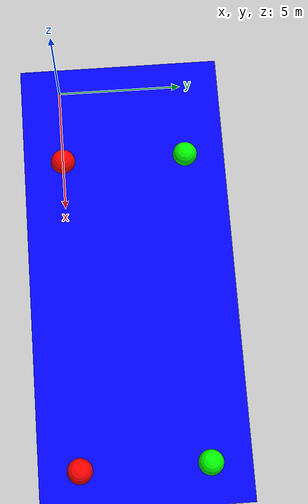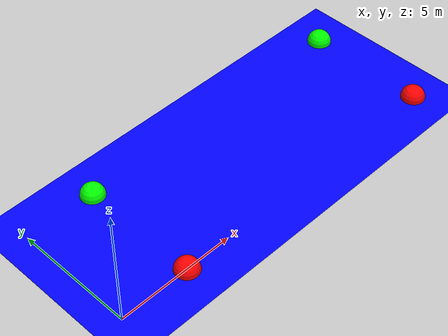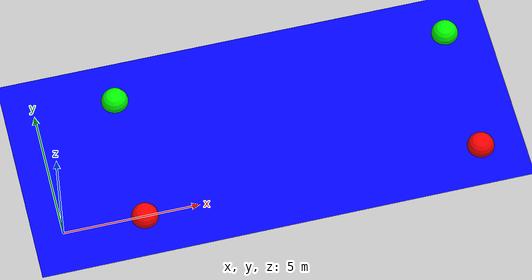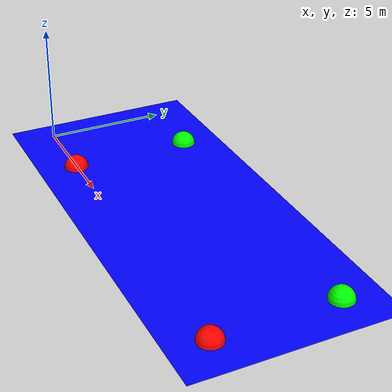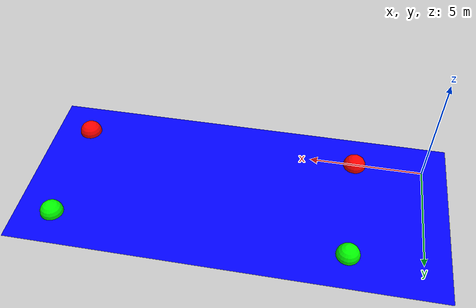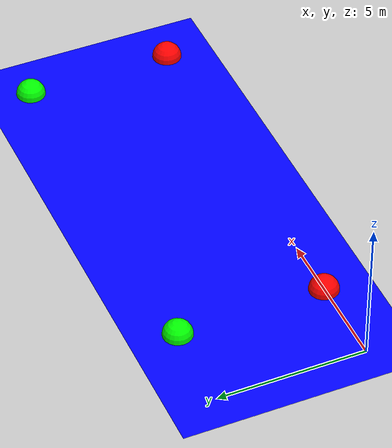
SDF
<sdf version='1.9'> <!-- Specify the version of SDF being used -->
  <world name='task-1'> <!-- Define the world name -->
    <physics name='1ms' type='ode'> <!-- Set physics engine parameters -->
      <max_step_size>0.001</max_step_size> <!-- Maximum step size for simulation -->
      <real_time_factor>1</real_time_factor> <!-- Real-time factor for simulation speed -->
      <real_time_update_rate>1000</real_time_update_rate> <!-- Update rate for real-time simulation -->
    </physics>
    <plugin name='ignition::gazebo::systems::Physics' filename='ignition-gazebo-physics-system'/> <!-- Load the physics plugin -->
    <plugin name='ignition::gazebo::systems::UserCommands' filename='ignition-gazebo-user-commands-system'/> <!-- Load user command plugin -->
    <plugin name='ignition::gazebo::systems::SceneBroadcaster' filename='ignition-gazebo-scene-broadcaster-system'/> <!-- Load scene broadcasting plugin -->
    <plugin name='ignition::gazebo::systems::Buoyancy' filename='ignition-gazebo-buoyancy-system'> <!-- Load buoyancy plugin -->
      <graded_buoyancy>
        <default_density>1000</default_density> <!-- Default water density -->
        <density_change>
          <above_depth>0</above_depth> <!-- Depth at which density changes apply -->
          <density>1</density> <!-- Density value for the buoyancy calculation -->
        </density_change>
        <!-- Enables object to have buoyancy -->
      </graded_buoyancy>
      <enable>sphere</enable>
      <enable>bouy1</enable> <!-- Enable buoyancy for the bouy1 top right -->
      <enable>bouy2</enable> <!-- Enable buoyancy for the bouy2 top left -->
      <enable>bouy3</enable> <!-- Enable buoyancy for the bouy3 bottom right -->
      <enable>bouy4</enable> <!-- Enable buoyancy for the bouy4 top right -->
    </plugin>
    <gravity>0 0 -9.8</gravity> <!-- Set gravity vector -->
    <magnetic_field>6e-06 2.3e-05 -4.2e-05</magnetic_field> <!-- Define magnetic field -->
    <atmosphere type='adiabatic'/> <!-- Define the type of atmosphere -->
    <scene>
      <ambient>0.4 0.4 0.4 1</ambient> <!-- Set ambient light color -->
      <background>0.7 0.7 0.7 1</background> <!-- Set background color -->
      <shadows>true</shadows> <!-- Enable shadows in the scene -->
    </scene>
    <model name='water_plane'> <!-- Define a model for the water surface -->
      <static>true</static> <!-- Make the water plane static -->
      <link name='link'> <!-- Create a link for the water plane -->
        <visual name='water_plane'> <!-- Define visual properties of the water plane -->
          <geometry>
            <plane>
              <size>100 100</size> <!-- Size of the water plane -->
              <normal>0 0 1</normal> <!-- Orientation of the plane -->
            </plane>
          </geometry>
          <material>
            <ambient>0 0 1 0.5</ambient> <!-- Set ambient color of the water -->
            <diffuse>0 0 1 0.5</diffuse> <!-- Set diffuse color of the water -->
            <specular>0 0 1 0.5</specular> <!-- Set specular color of the water -->
          </material>
        </visual>
        <pose>0 0 0 0 -0 0</pose> <!-- Position and orientation of the water plane -->
        <inertial>
          <pose>0 0 0 0 -0 0</pose> <!-- Inertial pose of the link -->
          <mass>1</mass> <!-- Mass of the water plane -->
          <inertia>
            <ixx>1</ixx> <!-- Inertia around x-axis -->
            <ixy>0</ixy> <!-- Inertia product xy -->
            <ixz>0</ixz> <!-- Inertia product xz -->
            <iyy>1</iyy> <!-- Inertia around y-axis -->
            <iyz>0</iyz> <!-- Inertia product yz -->
            <izz>1</izz> <!-- Inertia around z-axis -->
          </inertia>
        </inertial>
        <enable_wind>false</enable_wind> <!-- Disable wind effects on the water plane -->
      </link>
      <pose>0 0 0 0 -0 0</pose> <!-- Overall pose of the model -->
      <self_collide>false</self_collide> <!-- Disable self-collision for the model -->
    </model>

    <model name='buoy1'> <!-- Define a model for the sphere -->
      <pose>3 0 0 0 0 0</pose> <!-- Position and orientation of the sphere -->
      <link name='sphere_link'> <!-- Create a link for the sphere -->
        <inertial>
          <inertia>
            <ixx>0.1</ixx> <!-- Inertia around x-axis -->
            <ixy>0</ixy> <!-- Inertia product xy -->
            <ixz>0</ixz> <!-- Inertia product xz -->
            <iyy>0.1</iyy> <!-- Inertia around y-axis -->
            <iyz>0</iyz> <!-- Inertia product yz -->
            <izz>0.1</izz> <!-- Inertia around z-axis -->
          </inertia>
          <mass>25</mass> <!-- Mass of the sphere (should be adjusted for buoyancy) -->
          <pose>0 0 0 0 -0 0</pose> <!-- Inertial pose of the sphere -->
        </inertial>
        <collision name='sphere_collision'> <!-- Define collision properties for the sphere -->
          <geometry>
            <sphere>
              <radius>0.5</radius> <!-- Radius of the sphere -->
            </sphere>
          </geometry>
          <surface>
            <friction>
              <ode/> <!-- Friction settings for the collision -->
            </friction>
            <bounce/> <!-- Enable bounce on collision -->
            <contact/> <!-- Enable contact detection -->
          </surface>
        </collision>
        <visual name='sphere_visual'> <!-- Define visual properties for the sphere -->
          <geometry>
            <sphere>
              <radius>0.5</radius> <!-- Radius of the visual sphere -->
            </sphere>
          </geometry>
          <material>
            <ambient>1 0 0 1</ambient> <!-- Set ambient color to red -->
            <diffuse>1 0 0 1</diffuse> <!-- Set diffuse color to red -->
            <specular>1 0 0 1</specular> <!-- Set specular color to red -->
          </material>
        </visual>
        <pose>0 0 0 0 -0 0</pose> <!-- Pose of the visual element -->
        <enable_wind>false</enable_wind> <!-- Disable wind effects on the sphere -->
      </link>
      <static>false</static> <!-- Set sphere as non-static -->
      <self_collide>false</self_collide> <!-- Disable self-collision for the sphere -->
    </model>

    <model name='buoy2'> <!-- Define a model for the sphere -->
      <pose>15.5 0 0 0 0 0</pose> <!-- Position and orientation of the sphere -->
      <link name='sphere_link'> <!-- Create a link for the sphere -->
        <inertial>
          <inertia>
            <ixx>0.1</ixx> <!-- Inertia around x-axis -->
            <ixy>0</ixy> <!-- Inertia product xy -->
            <ixz>0</ixz> <!-- Inertia product xz -->
            <iyy>0.1</iyy> <!-- Inertia around y-axis -->
            <iyz>0</iyz> <!-- Inertia product yz -->
            <izz>0.1</izz> <!-- Inertia around z-axis -->
          </inertia>
          <mass>25</mass> <!-- Mass of the sphere (should be adjusted for buoyancy) -->
          <pose>0 0 0 0 -0 0</pose> <!-- Inertial pose of the sphere -->
        </inertial>
        <collision name='sphere_collision'> <!-- Define collision properties for the sphere -->
          <geometry>
            <sphere>
              <radius>0.5</radius> <!-- Radius of the sphere -->
            </sphere>
          </geometry>
          <surface>
            <friction>
              <ode/> <!-- Friction settings for the collision -->
            </friction>
            <bounce/> <!-- Enable bounce on collision -->
            <contact/> <!-- Enable contact detection -->
          </surface>
        </collision>
        <visual name='sphere_visual'> <!-- Define visual properties for the sphere -->
          <geometry>
            <sphere>
              <radius>0.5</radius> <!-- Radius of the visual sphere -->
            </sphere>
          </geometry>
          <material>
            <ambient>1 0 0 1</ambient> <!-- Set ambient color to red -->
            <diffuse>1 0 0 1</diffuse> <!-- Set diffuse color to red -->
            <specular>1 0 0 1</specular> <!-- Set specular color to red -->
          </material>
        </visual>
        <pose>0 0 0 0 -0 0</pose> <!-- Pose of the visual element -->
        <enable_wind>false</enable_wind> <!-- Disable wind effects on the sphere -->
      </link>
      <static>false</static> <!-- Set sphere as non-static -->
      <self_collide>false</self_collide> <!-- Disable self-collision for the sphere -->
    </model>

     <model name='buoy3'> <!-- Define a model for the sphere -->
      <pose>3 5 0 0 0 0</pose> <!-- Position and orientation of the sphere -->
      <link name='sphere_link'> <!-- Create a link for the sphere -->
        <inertial>
          <inertia>
            <ixx>0.1</ixx> <!-- Inertia around x-axis -->
            <ixy>0</ixy> <!-- Inertia product xy -->
            <ixz>0</ixz> <!-- Inertia product xz -->
            <iyy>0.1</iyy> <!-- Inertia around y-axis -->
            <iyz>0</iyz> <!-- Inertia product yz -->
            <izz>0.1</izz> <!-- Inertia around z-axis -->
          </inertia>
          <mass>25</mass> <!-- Mass of the sphere (should be adjusted for buoyancy) -->
          <pose>0 0 0 0 -0 0</pose> <!-- Inertial pose of the sphere -->
        </inertial>
        <collision name='sphere_collision'> <!-- Define collision properties for the sphere -->
          <geometry>
            <sphere>
              <radius>0.5</radius> <!-- Radius of the sphere -->
            </sphere>
          </geometry>
          <surface>s
            <friction>
              <ode/> <!-- Friction settings for the collision -->
            </friction>
            <bounce/> <!-- Enable bounce on collision -->
            <contact/> <!-- Enable contact detection -->
          </surface>
        </collision>
        <visual name='sphere_visual'> <!-- Define visual properties for the sphere -->
          <geometry>
            <sphere>
              <radius>0.5</radius> <!-- Radius of the visual sphere -->
            </sphere>
          </geometry>
          <material>
            <ambient>0 1 0 1</ambient> <!-- Set ambient color to green -->
            <diffuse>0 1 0 1</diffuse> <!-- Set diffuse color to green -->
            <specular>0 1 0 1</specular> <!-- Set specular color to green -->
          </material>
        </visual>
        <pose>0 0 0 0 -0 0</pose> <!-- Pose of the visual element -->
        <enable_wind>false</enable_wind> <!-- Disable wind effects on the sphere -->
      </link>
      <static>false</static> <!-- Set sphere as non-static -->
      <self_collide>false</self_collide> <!-- Disable self-collision for the sphere -->
    </model>

    <model name='buoy4'> <!-- Define a model for the sphere -->
      <pose>15.5 5 0 0 0 0</pose> <!-- Position and orientation of the sphere -->
      <link name='sphere_link'> <!-- Create a link for the sphere -->
        <inertial>
          <inertia>
            <ixx>0.1</ixx> <!-- Inertia around x-axis -->
            <ixy>0</ixy> <!-- Inertia product xy -->
            <ixz>0</ixz> <!-- Inertia product xz -->
            <iyy>0.1</iyy> <!-- Inertia around y-axis -->
            <iyz>0</iyz> <!-- Inertia product yz -->
            <izz>0.1</izz> <!-- Inertia around z-axis -->
          </inertia>
          <mass>25</mass> <!-- Mass of the sphere (should be adjusted for buoyancy) -->
          <pose>0 0 0 0 -0 0</pose> <!-- Inertial pose of the sphere -->
        </inertial>
        <collision name='sphere_collision'> <!-- Define collision properties for the sphere -->
          <geometry>
            <sphere>
              <radius>0.5</radius> <!-- Radius of the sphere -->
            </sphere>
          </geometry>
          <surface>
            <friction>
              <ode/> <!-- Friction settings for the collision -->
            </friction>
            <bounce/> <!-- Enable bounce on collision -->
            <contact/> <!-- Enable contact detection -->
          </surface>
        </collision>
        <visual name='sphere_visual'> <!-- Define visual properties for the sphere -->
          <geometry>
            <sphere>
              <radius>0.5</radius> <!-- Radius of the visual sphere -->
            </sphere>
          </geometry>
          <material>
            <ambient>0 1 0 1</ambient> <!-- Set ambient color to green -->
            <diffuse>0 1 0 1</diffuse> <!-- Set diffuse color to green -->
            <specular>0 1 0 1</specular> <!-- Set specular color to green -->
          </material>
        </visual>
        <pose>0 0 0 0 -0 0</pose> <!-- Pose of the visual element -->
        <enable_wind>false</enable_wind> <!-- Disable wind effects on the sphere -->
      </link>
      <static>false</static> <!-- Set sphere as non-static -->
      <self_collide>false</self_collide> <!-- Disable self-collision for the sphere -->
    </model>

    <light name='sun' type='directional'> <!-- Define a directional light source -->
      <pose>0 0 10 0 -0 0</pose> <!-- Position and orientation of the light -->
      <cast_shadows>true</cast_shadows> <!-- Enable shadow casting for the light -->
      <intensity>1</intensity> <!-- Intensity of the light -->
      <direction>-0.5 0.1 -0.9</direction> <!-- Direction of the light -->
      <diffuse>1 1 1 1</diffuse> <!-- Diffuse color of the light -->
      <specular>0.5 0.5 0.5 1</specular> <!-- Specular color of the light -->
      <attenuation>
        <range>1000</range> <!-- Maximum range of the light -->
        <linear>0.01</linear> <!-- Linear attenuation factor -->
        <constant>0.90000000000000002</constant> <!-- Constant attenuation factor -->
        <quadratic>0.001</quadratic> <!-- Quadratic attenuation factor -->
      </attenuation>
      <spot>
        <inner_angle>0</inner_angle> <!-- Inner angle for spotlight effect -->
        <outer_angle>0</outer_angle> <!-- Outer angle for spotlight effect -->
        <falloff>0</falloff> <!-- Falloff factor for spotlight effect -->
      </spot>
    </light>
  </world>
</sdf>
